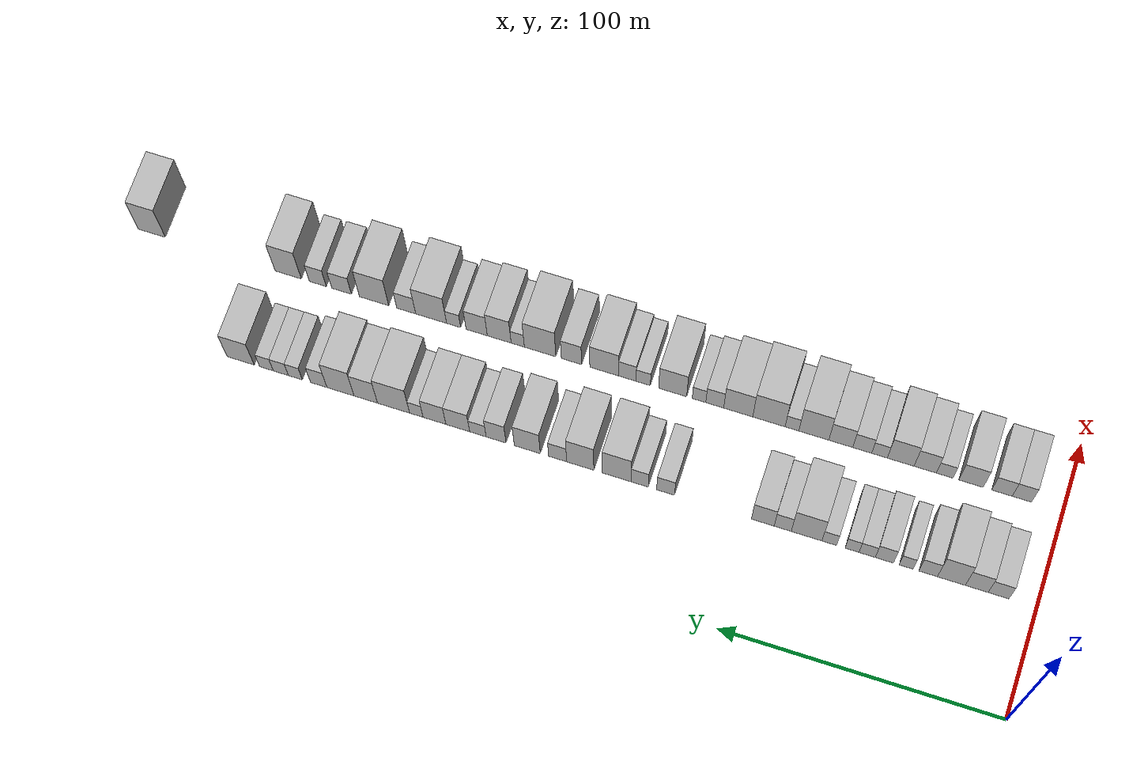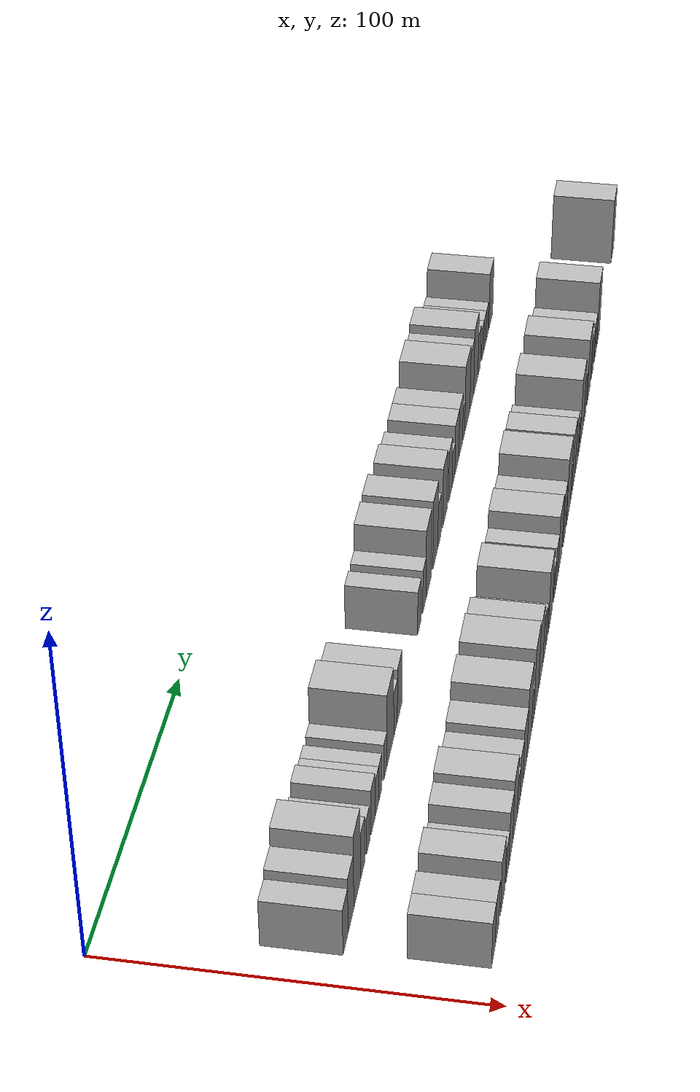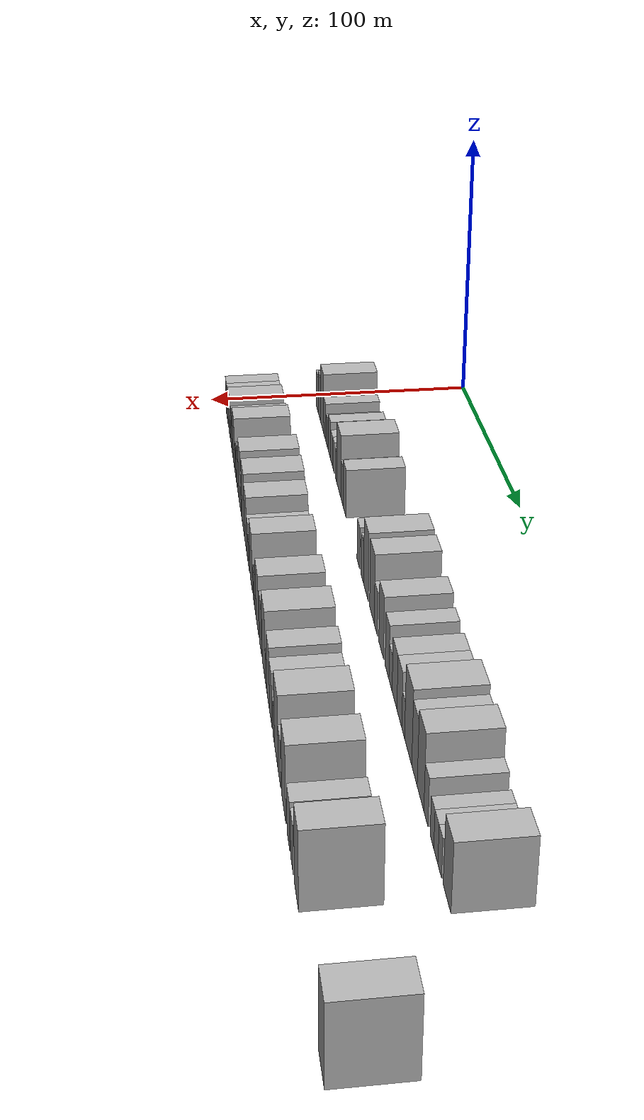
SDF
<sdf version="1.6">
 <world name="default">
  <model name="building_32">
   <static>1</static>
   <pose>50.0000 13.3636 0 0.000000 0.000000 0.000000</pose>
   <link name="link">
    <pose>0 0 7.50 0 0 0</pose>
    <collision name="collision"><geometry><box><size>20.0000 7.2272 15.0000</size></box></geometry></collision>
    <visual name="visual">
     <cast_shadows>0</cast_shadows>
     <geometry><box><size>20.0000 7.2272 15.0000</size></box></geometry>
     <material>
      <script>
       <uri>model://HANNAS_wall/materials/scripts</uri>
       <uri>model://HANNAS_wall/materials/textures</uri>
       <name>vrc/HANNAS_wall</name>
      </script>
     </material>
    </visual>
   </link>
  </model>
  <model name="building_33">
   <static>1</static>
   <pose>50.0000 20.9551 0 0.000000 0.000000 0.000000</pose>
   <link name="link">
    <pose>0 0 9.00 0 0 0</pose>
    <collision name="collision"><geometry><box><size>20.0000 7.9557 18.0000</size></box></geometry></collision>
    <visual name="visual">
     <cast_shadows>0</cast_shadows>
     <geometry><box><size>20.0000 7.9557 18.0000</size></box></geometry>
     <material>
      <script>
       <uri>model://HANNAS_wall/materials/scripts</uri>
       <uri>model://HANNAS_wall/materials/textures</uri>
       <name>vrc/HANNAS_wall</name>
      </script>
     </material>
    </visual>
   </link>
  </model>
  <model name="building_34">
   <static>1</static>
   <pose>50.0000 29.8034 0 0.000000 0.000000 0.000000</pose>
   <link name="link">
    <pose>0 0 12.00 0 0 0</pose>
    <collision name="collision"><geometry><box><size>20.0000 9.7410 24.0000</size></box></geometry></collision>
    <visual name="visual">
     <cast_shadows>0</cast_shadows>
     <geometry><box><size>20.0000 9.7410 24.0000</size></box></geometry>
     <material>
      <script>
       <uri>model://HANNAS_wall/materials/scripts</uri>
       <uri>model://HANNAS_wall/materials/textures</uri>
       <name>vrc/HANNAS_wall</name>
      </script>
     </material>
    </visual>
   </link>
  </model>
  <model name="building_35">
   <static>1</static>
   <pose>50.0000 37.9093 0 0.000000 0.000000 0.000000</pose>
   <link name="link">
    <pose>0 0 7.50 0 0 0</pose>
    <collision name="collision"><geometry><box><size>20.0000 6.4709 15.0000</size></box></geometry></collision>
    <visual name="visual">
     <cast_shadows>0</cast_shadows>
     <geometry><box><size>20.0000 6.4709 15.0000</size></box></geometry>
     <material>
      <script>
       <uri>model://HANNAS_wall/materials/scripts</uri>
       <uri>model://HANNAS_wall/materials/textures</uri>
       <name>vrc/HANNAS_wall</name>
      </script>
     </material>
    </visual>
   </link>
  </model>
  <model name="building_36">
   <static>1</static>
   <pose>50.0000 45.5995 0 0.000000 0.000000 0.000000</pose>
   <link name="link">
    <pose>0 0 6.00 0 0 0</pose>
    <collision name="collision"><geometry><box><size>20.0000 4.9094 12.0000</size></box></geometry></collision>
    <visual name="visual">
     <cast_shadows>0</cast_shadows>
     <geometry><box><size>20.0000 4.9094 12.0000</size></box></geometry>
     <material>
      <script>
       <uri>model://HANNAS_wall/materials/scripts</uri>
       <uri>model://HANNAS_wall/materials/textures</uri>
       <name>vrc/HANNAS_wall</name>
      </script>
     </material>
    </visual>
   </link>
  </model>
  <model name="building_37">
   <static>1</static>
   <pose>50.0000 53.2452 0 0.000000 0.000000 0.000000</pose>
   <link name="link">
    <pose>0 0 7.50 0 0 0</pose>
    <collision name="collision"><geometry><box><size>20.0000 6.3820 15.0000</size></box></geometry></collision>
    <visual name="visual">
     <cast_shadows>0</cast_shadows>
     <geometry><box><size>20.0000 6.3820 15.0000</size></box></geometry>
     <material>
      <script>
       <uri>model://HANNAS_wall/materials/scripts</uri>
       <uri>model://HANNAS_wall/materials/textures</uri>
       <name>vrc/HANNAS_wall</name>
      </script>
     </material>
    </visual>
   </link>
  </model>
  <model name="building_38">
   <static>1</static>
   <pose>50.0000 59.3104 0 0.000000 0.000000 0.000000</pose>
   <link name="link">
    <pose>0 0 6.00 0 0 0</pose>
    <collision name="collision"><geometry><box><size>20.0000 5.7483 12.0000</size></box></geometry></collision>
    <visual name="visual">
     <cast_shadows>0</cast_shadows>
     <geometry><box><size>20.0000 5.7483 12.0000</size></box></geometry>
     <material>
      <script>
       <uri>model://HANNAS_wall/materials/scripts</uri>
       <uri>model://HANNAS_wall/materials/textures</uri>
       <name>vrc/HANNAS_wall</name>
      </script>
     </material>
    </visual>
   </link>
  </model>
  <model name="building_39">
   <static>1</static>
   <pose>50.0000 64.6195 0 0.000000 0.000000 0.000000</pose>
   <link name="link">
    <pose>0 0 6.00 0 0 0</pose>
    <collision name="collision"><geometry><box><size>20.0000 4.8699 12.0000</size></box></geometry></collision>
    <visual name="visual">
     <cast_shadows>0</cast_shadows>
     <geometry><box><size>20.0000 4.8699 12.0000</size></box></geometry>
     <material>
      <script>
       <uri>model://HANNAS_wall/materials/scripts</uri>
       <uri>model://HANNAS_wall/materials/textures</uri>
       <name>vrc/HANNAS_wall</name>
      </script>
     </material>
    </visual>
   </link>
  </model>
  <model name="building_40">
   <static>1</static>
   <pose>50.0000 72.6378 0 0.000000 0.000000 0.000000</pose>
   <link name="link">
    <pose>0 0 6.00 0 0 0</pose>
    <collision name="collision"><geometry><box><size>20.0000 5.1669 12.0000</size></box></geometry></collision>
    <visual name="visual">
     <cast_shadows>0</cast_shadows>
     <geometry><box><size>20.0000 5.1669 12.0000</size></box></geometry>
     <material>
      <script>
       <uri>model://HANNAS_wall/materials/scripts</uri>
       <uri>model://HANNAS_wall/materials/textures</uri>
       <name>vrc/HANNAS_wall</name>
      </script>
     </material>
    </visual>
   </link>
  </model>
  <model name="building_41">
   <static>1</static>
   <pose>50.0000 80.6413 0 0.000000 0.000000 0.000000</pose>
   <link name="link">
    <pose>0 0 12.00 0 0 0</pose>
    <collision name="collision"><geometry><box><size>20.0000 10.8400 24.0000</size></box></geometry></collision>
    <visual name="visual">
     <cast_shadows>0</cast_shadows>
     <geometry><box><size>20.0000 10.8400 24.0000</size></box></geometry>
     <material>
      <script>
       <uri>model://HANNAS_wall/materials/scripts</uri>
       <uri>model://HANNAS_wall/materials/textures</uri>
       <name>vrc/HANNAS_wall</name>
      </script>
     </material>
    </visual>
   </link>
  </model>
  <model name="building_42">
   <static>1</static>
   <pose>50.0000 89.0804 0 0.000000 0.000000 0.000000</pose>
   <link name="link">
    <pose>0 0 7.50 0 0 0</pose>
    <collision name="collision"><geometry><box><size>20.0000 6.0383 15.0000</size></box></geometry></collision>
    <visual name="visual">
     <cast_shadows>0</cast_shadows>
     <geometry><box><size>20.0000 6.0383 15.0000</size></box></geometry>
     <material>
      <script>
       <uri>model://HANNAS_wall/materials/scripts</uri>
       <uri>model://HANNAS_wall/materials/textures</uri>
       <name>vrc/HANNAS_wall</name>
      </script>
     </material>
    </visual>
   </link>
  </model>
  <model name="building_43">
   <static>1</static>
   <pose>50.0000 96.1338 0 0.000000 0.000000 0.000000</pose>
   <link name="link">
    <pose>0 0 9.00 0 0 0</pose>
    <collision name="collision"><geometry><box><size>20.0000 8.0684 18.0000</size></box></geometry></collision>
    <visual name="visual">
     <cast_shadows>0</cast_shadows>
     <geometry><box><size>20.0000 8.0684 18.0000</size></box></geometry>
     <material>
      <script>
       <uri>model://HANNAS_wall/materials/scripts</uri>
       <uri>model://HANNAS_wall/materials/textures</uri>
       <name>vrc/HANNAS_wall</name>
      </script>
     </material>
    </visual>
   </link>
  </model>
  <model name="building_44">
   <static>1</static>
   <pose>50.0000 130.7554 0 0.000000 0.000000 0.000000</pose>
   <link name="link">
    <pose>0 0 7.50 0 0 0</pose>
    <collision name="collision"><geometry><box><size>20.0000 6.3916 15.0000</size></box></geometry></collision>
    <visual name="visual">
     <cast_shadows>0</cast_shadows>
     <geometry><box><size>20.0000 6.3916 15.0000</size></box></geometry>
     <material>
      <script>
       <uri>model://HANNAS_wall/materials/scripts</uri>
       <uri>model://HANNAS_wall/materials/textures</uri>
       <name>vrc/HANNAS_wall</name>
      </script>
     </material>
    </visual>
   </link>
  </model>
  <model name="building_45">
   <static>1</static>
   <pose>50.0000 140.0205 0 0.000000 0.000000 0.000000</pose>
   <link name="link">
    <pose>0 0 7.50 0 0 0</pose>
    <collision name="collision"><geometry><box><size>20.0000 6.1386 15.0000</size></box></geometry></collision>
    <visual name="visual">
     <cast_shadows>0</cast_shadows>
     <geometry><box><size>20.0000 6.1386 15.0000</size></box></geometry>
     <material>
      <script>
       <uri>model://HANNAS_wall/materials/scripts</uri>
       <uri>model://HANNAS_wall/materials/textures</uri>
       <name>vrc/HANNAS_wall</name>
      </script>
     </material>
    </visual>
   </link>
  </model>
  <model name="building_46">
   <static>1</static>
   <pose>50.0000 148.2780 0 0.000000 0.000000 0.000000</pose>
   <link name="link">
    <pose>0 0 12.00 0 0 0</pose>
    <collision name="collision"><geometry><box><size>20.0000 10.3763 24.0000</size></box></geometry></collision>
    <visual name="visual">
     <cast_shadows>0</cast_shadows>
     <geometry><box><size>20.0000 10.3763 24.0000</size></box></geometry>
     <material>
      <script>
       <uri>model://HANNAS_wall/materials/scripts</uri>
       <uri>model://HANNAS_wall/materials/textures</uri>
       <name>vrc/HANNAS_wall</name>
      </script>
     </material>
    </visual>
   </link>
  </model>
  <model name="building_47">
   <static>1</static>
   <pose>50.0000 161.3583 0 0.000000 0.000000 0.000000</pose>
   <link name="link">
    <pose>0 0 12.00 0 0 0</pose>
    <collision name="collision"><geometry><box><size>20.0000 9.7842 24.0000</size></box></geometry></collision>
    <visual name="visual">
     <cast_shadows>0</cast_shadows>
     <geometry><box><size>20.0000 9.7842 24.0000</size></box></geometry>
     <material>
      <script>
       <uri>model://HANNAS_wall/materials/scripts</uri>
       <uri>model://HANNAS_wall/materials/textures</uri>
       <name>vrc/HANNAS_wall</name>
      </script>
     </material>
    </visual>
   </link>
  </model>
  <model name="building_48">
   <static>1</static>
   <pose>50.0000 169.5037 0 0.000000 0.000000 0.000000</pose>
   <link name="link">
    <pose>0 0 7.50 0 0 0</pose>
    <collision name="collision"><geometry><box><size>20.0000 6.5066 15.0000</size></box></geometry></collision>
    <visual name="visual">
     <cast_shadows>0</cast_shadows>
     <geometry><box><size>20.0000 6.5066 15.0000</size></box></geometry>
     <material>
      <script>
       <uri>model://HANNAS_wall/materials/scripts</uri>
       <uri>model://HANNAS_wall/materials/textures</uri>
       <name>vrc/HANNAS_wall</name>
      </script>
     </material>
    </visual>
   </link>
  </model>
  <model name="building_49">
   <static>1</static>
   <pose>50.0000 180.4436 0 0.000000 0.000000 0.000000</pose>
   <link name="link">
    <pose>0 0 10.50 0 0 0</pose>
    <collision name="collision"><geometry><box><size>20.0000 9.3733 21.0000</size></box></geometry></collision>
    <visual name="visual">
     <cast_shadows>0</cast_shadows>
     <geometry><box><size>20.0000 9.3733 21.0000</size></box></geometry>
     <material>
      <script>
       <uri>model://HANNAS_wall/materials/scripts</uri>
       <uri>model://HANNAS_wall/materials/textures</uri>
       <name>vrc/HANNAS_wall</name>
      </script>
     </material>
    </visual>
   </link>
  </model>
  <model name="building_50">
   <static>1</static>
   <pose>50.0000 191.7479 0 0.000000 0.000000 0.000000</pose>
   <link name="link">
    <pose>0 0 9.00 0 0 0</pose>
    <collision name="collision"><geometry><box><size>20.0000 7.2354 18.0000</size></box></geometry></collision>
    <visual name="visual">
     <cast_shadows>0</cast_shadows>
     <geometry><box><size>20.0000 7.2354 18.0000</size></box></geometry>
     <material>
      <script>
       <uri>model://HANNAS_wall/materials/scripts</uri>
       <uri>model://HANNAS_wall/materials/textures</uri>
       <name>vrc/HANNAS_wall</name>
      </script>
     </material>
    </visual>
   </link>
  </model>
  <model name="building_51">
   <static>1</static>
   <pose>50.0000 198.3375 0 0.000000 0.000000 0.000000</pose>
   <link name="link">
    <pose>0 0 6.00 0 0 0</pose>
    <collision name="collision"><geometry><box><size>20.0000 5.9438 12.0000</size></box></geometry></collision>
    <visual name="visual">
     <cast_shadows>0</cast_shadows>
     <geometry><box><size>20.0000 5.9438 12.0000</size></box></geometry>
     <material>
      <script>
       <uri>model://HANNAS_wall/materials/scripts</uri>
       <uri>model://HANNAS_wall/materials/textures</uri>
       <name>vrc/HANNAS_wall</name>
      </script>
     </material>
    </visual>
   </link>
  </model>
  <model name="building_52">
   <static>1</static>
   <pose>50.0000 205.6407 0 0.000000 0.000000 0.000000</pose>
   <link name="link">
    <pose>0 0 9.00 0 0 0</pose>
    <collision name="collision"><geometry><box><size>20.0000 8.6625 18.0000</size></box></geometry></collision>
    <visual name="visual">
     <cast_shadows>0</cast_shadows>
     <geometry><box><size>20.0000 8.6625 18.0000</size></box></geometry>
     <material>
      <script>
       <uri>model://HANNAS_wall/materials/scripts</uri>
       <uri>model://HANNAS_wall/materials/textures</uri>
       <name>vrc/HANNAS_wall</name>
      </script>
     </material>
    </visual>
   </link>
  </model>
  <model name="building_53">
   <static>1</static>
   <pose>50.0000 214.1257 0 0.000000 0.000000 0.000000</pose>
   <link name="link">
    <pose>0 0 9.00 0 0 0</pose>
    <collision name="collision"><geometry><box><size>20.0000 8.3075 18.0000</size></box></geometry></collision>
    <visual name="visual">
     <cast_shadows>0</cast_shadows>
     <geometry><box><size>20.0000 8.3075 18.0000</size></box></geometry>
     <material>
      <script>
       <uri>model://HANNAS_wall/materials/scripts</uri>
       <uri>model://HANNAS_wall/materials/textures</uri>
       <name>vrc/HANNAS_wall</name>
      </script>
     </material>
    </visual>
   </link>
  </model>
  <model name="building_54">
   <static>1</static>
   <pose>50.0000 220.7303 0 0.000000 0.000000 0.000000</pose>
   <link name="link">
    <pose>0 0 6.00 0 0 0</pose>
    <collision name="collision"><geometry><box><size>20.0000 4.9018 12.0000</size></box></geometry></collision>
    <visual name="visual">
     <cast_shadows>0</cast_shadows>
     <geometry><box><size>20.0000 4.9018 12.0000</size></box></geometry>
     <material>
      <script>
       <uri>model://HANNAS_wall/materials/scripts</uri>
       <uri>model://HANNAS_wall/materials/textures</uri>
       <name>vrc/HANNAS_wall</name>
      </script>
     </material>
    </visual>
   </link>
  </model>
  <model name="building_55">
   <static>1</static>
   <pose>50.0000 229.0439 0 0.000000 0.000000 0.000000</pose>
   <link name="link">
    <pose>0 0 12.00 0 0 0</pose>
    <collision name="collision"><geometry><box><size>20.0000 11.7254 24.0000</size></box></geometry></collision>
    <visual name="visual">
     <cast_shadows>0</cast_shadows>
     <geometry><box><size>20.0000 11.7254 24.0000</size></box></geometry>
     <material>
      <script>
       <uri>model://HANNAS_wall/materials/scripts</uri>
       <uri>model://HANNAS_wall/materials/textures</uri>
       <name>vrc/HANNAS_wall</name>
      </script>
     </material>
    </visual>
   </link>
  </model>
  <model name="building_56">
   <static>1</static>
   <pose>50.0000 239.1916 0 0.000000 0.000000 0.000000</pose>
   <link name="link">
    <pose>0 0 10.50 0 0 0</pose>
    <collision name="collision"><geometry><box><size>20.0000 8.5701 21.0000</size></box></geometry></collision>
    <visual name="visual">
     <cast_shadows>0</cast_shadows>
     <geometry><box><size>20.0000 8.5701 21.0000</size></box></geometry>
     <material>
      <script>
       <uri>model://HANNAS_wall/materials/scripts</uri>
       <uri>model://HANNAS_wall/materials/textures</uri>
       <name>vrc/HANNAS_wall</name>
      </script>
     </material>
    </visual>
   </link>
  </model>
  <model name="building_57">
   <static>1</static>
   <pose>50.0000 248.4637 0 0.000000 0.000000 0.000000</pose>
   <link name="link">
    <pose>0 0 12.00 0 0 0</pose>
    <collision name="collision"><geometry><box><size>20.0000 9.9740 24.0000</size></box></geometry></collision>
    <visual name="visual">
     <cast_shadows>0</cast_shadows>
     <geometry><box><size>20.0000 9.9740 24.0000</size></box></geometry>
     <material>
      <script>
       <uri>model://HANNAS_wall/materials/scripts</uri>
       <uri>model://HANNAS_wall/materials/textures</uri>
       <name>vrc/HANNAS_wall</name>
      </script>
     </material>
    </visual>
   </link>
  </model>
  <model name="building_58">
   <static>1</static>
   <pose>50.0000 256.4814 0 0.000000 0.000000 0.000000</pose>
   <link name="link">
    <pose>0 0 7.50 0 0 0</pose>
    <collision name="collision"><geometry><box><size>20.0000 6.0614 15.0000</size></box></geometry></collision>
    <visual name="visual">
     <cast_shadows>0</cast_shadows>
     <geometry><box><size>20.0000 6.0614 15.0000</size></box></geometry>
     <material>
      <script>
       <uri>model://HANNAS_wall/materials/scripts</uri>
       <uri>model://HANNAS_wall/materials/textures</uri>
       <name>vrc/HANNAS_wall</name>
      </script>
     </material>
    </visual>
   </link>
  </model>
  <model name="building_59">
   <static>1</static>
   <pose>50.0000 265.0682 0 0.000000 0.000000 0.000000</pose>
   <link name="link">
    <pose>0 0 6.00 0 0 0</pose>
    <collision name="collision"><geometry><box><size>20.0000 5.1121 12.0000</size></box></geometry></collision>
    <visual name="visual">
     <cast_shadows>0</cast_shadows>
     <geometry><box><size>20.0000 5.1121 12.0000</size></box></geometry>
     <material>
      <script>
       <uri>model://HANNAS_wall/materials/scripts</uri>
       <uri>model://HANNAS_wall/materials/textures</uri>
       <name>vrc/HANNAS_wall</name>
      </script>
     </material>
    </visual>
   </link>
  </model>
  <model name="building_60">
   <static>1</static>
   <pose>50.0000 270.4138 0 0.000000 0.000000 0.000000</pose>
   <link name="link">
    <pose>0 0 6.00 0 0 0</pose>
    <collision name="collision"><geometry><box><size>20.0000 5.5793 12.0000</size></box></geometry></collision>
    <visual name="visual">
     <cast_shadows>0</cast_shadows>
     <geometry><box><size>20.0000 5.5793 12.0000</size></box></geometry>
     <material>
      <script>
       <uri>model://HANNAS_wall/materials/scripts</uri>
       <uri>model://HANNAS_wall/materials/textures</uri>
       <name>vrc/HANNAS_wall</name>
      </script>
     </material>
    </visual>
   </link>
  </model>
  <model name="building_61">
   <static>1</static>
   <pose>50.0000 275.7355 0 0.000000 0.000000 0.000000</pose>
   <link name="link">
    <pose>0 0 6.00 0 0 0</pose>
    <collision name="collision"><geometry><box><size>20.0000 5.0640 12.0000</size></box></geometry></collision>
    <visual name="visual">
     <cast_shadows>0</cast_shadows>
     <geometry><box><size>20.0000 5.0640 12.0000</size></box></geometry>
     <material>
      <script>
       <uri>model://HANNAS_wall/materials/scripts</uri>
       <uri>model://HANNAS_wall/materials/textures</uri>
       <name>vrc/HANNAS_wall</name>
      </script>
     </material>
    </visual>
   </link>
  </model>
  <model name="building_62">
   <static>1</static>
   <pose>50.0000 285.2897 0 0.000000 0.000000 0.000000</pose>
   <link name="link">
    <pose>0 0 10.50 0 0 0</pose>
    <collision name="collision"><geometry><box><size>20.0000 10.0445 21.0000</size></box></geometry></collision>
    <visual name="visual">
     <cast_shadows>0</cast_shadows>
     <geometry><box><size>20.0000 10.0445 21.0000</size></box></geometry>
     <material>
      <script>
       <uri>model://HANNAS_wall/materials/scripts</uri>
       <uri>model://HANNAS_wall/materials/textures</uri>
       <name>vrc/HANNAS_wall</name>
      </script>
     </material>
    </visual>
   </link>
  </model>
  <model name="building_94">
   <static>1</static>
   <pose>85.0000 14.5517 0 0.000000 0.000000 0.000000</pose>
   <link name="link">
    <pose>0 0 7.50 0 0 0</pose>
    <collision name="collision"><geometry><box><size>20.0000 6.7993 15.0000</size></box></geometry></collision>
    <visual name="visual">
     <cast_shadows>0</cast_shadows>
     <geometry><box><size>20.0000 6.7993 15.0000</size></box></geometry>
     <material>
      <script>
       <uri>model://HANNAS_wall/materials/scripts</uri>
       <uri>model://HANNAS_wall/materials/textures</uri>
       <name>vrc/HANNAS_wall</name>
      </script>
     </material>
    </visual>
   </link>
  </model>
  <model name="building_95">
   <static>1</static>
   <pose>85.0000 21.5621 0 0.000000 0.000000 0.000000</pose>
   <link name="link">
    <pose>0 0 7.50 0 0 0</pose>
    <collision name="collision"><geometry><box><size>20.0000 7.2215 15.0000</size></box></geometry></collision>
    <visual name="visual">
     <cast_shadows>0</cast_shadows>
     <geometry><box><size>20.0000 7.2215 15.0000</size></box></geometry>
     <material>
      <script>
       <uri>model://HANNAS_wall/materials/scripts</uri>
       <uri>model://HANNAS_wall/materials/textures</uri>
       <name>vrc/HANNAS_wall</name>
      </script>
     </material>
    </visual>
   </link>
  </model>
  <model name="building_96">
   <static>1</static>
   <pose>85.0000 32.5027 0 0.000000 0.000000 0.000000</pose>
   <link name="link">
    <pose>0 0 9.00 0 0 0</pose>
    <collision name="collision"><geometry><box><size>20.0000 8.6599 18.0000</size></box></geometry></collision>
    <visual name="visual">
     <cast_shadows>0</cast_shadows>
     <geometry><box><size>20.0000 8.6599 18.0000</size></box></geometry>
     <material>
      <script>
       <uri>model://HANNAS_wall/materials/scripts</uri>
       <uri>model://HANNAS_wall/materials/textures</uri>
       <name>vrc/HANNAS_wall</name>
      </script>
     </material>
    </visual>
   </link>
  </model>
  <model name="building_97">
   <static>1</static>
   <pose>85.0000 41.7914 0 0.000000 0.000000 0.000000</pose>
   <link name="link">
    <pose>0 0 6.00 0 0 0</pose>
    <collision name="collision"><geometry><box><size>20.0000 5.9176 12.0000</size></box></geometry></collision>
    <visual name="visual">
     <cast_shadows>0</cast_shadows>
     <geometry><box><size>20.0000 5.9176 12.0000</size></box></geometry>
     <material>
      <script>
       <uri>model://HANNAS_wall/materials/scripts</uri>
       <uri>model://HANNAS_wall/materials/textures</uri>
       <name>vrc/HANNAS_wall</name>
      </script>
     </material>
    </visual>
   </link>
  </model>
  <model name="building_98">
   <static>1</static>
   <pose>85.0000 48.6996 0 0.000000 0.000000 0.000000</pose>
   <link name="link">
    <pose>0 0 9.00 0 0 0</pose>
    <collision name="collision"><geometry><box><size>20.0000 7.8988 18.0000</size></box></geometry></collision>
    <visual name="visual">
     <cast_shadows>0</cast_shadows>
     <geometry><box><size>20.0000 7.8988 18.0000</size></box></geometry>
     <material>
      <script>
       <uri>model://HANNAS_wall/materials/scripts</uri>
       <uri>model://HANNAS_wall/materials/textures</uri>
       <name>vrc/HANNAS_wall</name>
      </script>
     </material>
    </visual>
   </link>
  </model>
  <model name="building_99">
   <static>1</static>
   <pose>85.0000 57.4190 0 0.000000 0.000000 0.000000</pose>
   <link name="link">
    <pose>0 0 10.50 0 0 0</pose>
    <collision name="collision"><geometry><box><size>20.0000 9.5400 21.0000</size></box></geometry></collision>
    <visual name="visual">
     <cast_shadows>0</cast_shadows>
     <geometry><box><size>20.0000 9.5400 21.0000</size></box></geometry>
     <material>
      <script>
       <uri>model://HANNAS_wall/materials/scripts</uri>
       <uri>model://HANNAS_wall/materials/textures</uri>
       <name>vrc/HANNAS_wall</name>
      </script>
     </material>
    </visual>
   </link>
  </model>
  <model name="building_100">
   <static>1</static>
   <pose>85.0000 64.9570 0 0.000000 0.000000 0.000000</pose>
   <link name="link">
    <pose>0 0 6.00 0 0 0</pose>
    <collision name="collision"><geometry><box><size>20.0000 5.5361 12.0000</size></box></geometry></collision>
    <visual name="visual">
     <cast_shadows>0</cast_shadows>
     <geometry><box><size>20.0000 5.5361 12.0000</size></box></geometry>
     <material>
      <script>
       <uri>model://HANNAS_wall/materials/scripts</uri>
       <uri>model://HANNAS_wall/materials/textures</uri>
       <name>vrc/HANNAS_wall</name>
      </script>
     </material>
    </visual>
   </link>
  </model>
  <model name="building_101">
   <static>1</static>
   <pose>85.0000 71.0987 0 0.000000 0.000000 0.000000</pose>
   <link name="link">
    <pose>0 0 7.50 0 0 0</pose>
    <collision name="collision"><geometry><box><size>20.0000 6.7472 15.0000</size></box></geometry></collision>
    <visual name="visual">
     <cast_shadows>0</cast_shadows>
     <geometry><box><size>20.0000 6.7472 15.0000</size></box></geometry>
     <material>
      <script>
       <uri>model://HANNAS_wall/materials/scripts</uri>
       <uri>model://HANNAS_wall/materials/textures</uri>
       <name>vrc/HANNAS_wall</name>
      </script>
     </material>
    </visual>
   </link>
  </model>
  <model name="building_102">
   <static>1</static>
   <pose>85.0000 78.7626 0 0.000000 0.000000 0.000000</pose>
   <link name="link">
    <pose>0 0 9.00 0 0 0</pose>
    <collision name="collision"><geometry><box><size>20.0000 8.5805 18.0000</size></box></geometry></collision>
    <visual name="visual">
     <cast_shadows>0</cast_shadows>
     <geometry><box><size>20.0000 8.5805 18.0000</size></box></geometry>
     <material>
      <script>
       <uri>model://HANNAS_wall/materials/scripts</uri>
       <uri>model://HANNAS_wall/materials/textures</uri>
       <name>vrc/HANNAS_wall</name>
      </script>
     </material>
    </visual>
   </link>
  </model>
  <model name="building_103">
   <static>1</static>
   <pose>85.0000 88.4265 0 0.000000 0.000000 0.000000</pose>
   <link name="link">
    <pose>0 0 12.00 0 0 0</pose>
    <collision name="collision"><geometry><box><size>20.0000 10.7473 24.0000</size></box></geometry></collision>
    <visual name="visual">
     <cast_shadows>0</cast_shadows>
     <geometry><box><size>20.0000 10.7473 24.0000</size></box></geometry>
     <material>
      <script>
       <uri>model://HANNAS_wall/materials/scripts</uri>
       <uri>model://HANNAS_wall/materials/textures</uri>
       <name>vrc/HANNAS_wall</name>
      </script>
     </material>
    </visual>
   </link>
  </model>
  <model name="building_104">
   <static>1</static>
   <pose>85.0000 96.2501 0 0.000000 0.000000 0.000000</pose>
   <link name="link">
    <pose>0 0 6.00 0 0 0</pose>
    <collision name="collision"><geometry><box><size>20.0000 4.8999 12.0000</size></box></geometry></collision>
    <visual name="visual">
     <cast_shadows>0</cast_shadows>
     <geometry><box><size>20.0000 4.8999 12.0000</size></box></geometry>
     <material>
      <script>
       <uri>model://HANNAS_wall/materials/scripts</uri>
       <uri>model://HANNAS_wall/materials/textures</uri>
       <name>vrc/HANNAS_wall</name>
      </script>
     </material>
    </visual>
   </link>
  </model>
  <model name="building_105">
   <static>1</static>
   <pose>85.0000 104.5056 0 0.000000 0.000000 0.000000</pose>
   <link name="link">
    <pose>0 0 12.00 0 0 0</pose>
    <collision name="collision"><geometry><box><size>20.0000 11.6113 24.0000</size></box></geometry></collision>
    <visual name="visual">
     <cast_shadows>0</cast_shadows>
     <geometry><box><size>20.0000 11.6113 24.0000</size></box></geometry>
     <material>
      <script>
       <uri>model://HANNAS_wall/materials/scripts</uri>
       <uri>model://HANNAS_wall/materials/textures</uri>
       <name>vrc/HANNAS_wall</name>
      </script>
     </material>
    </visual>
   </link>
  </model>
  <model name="building_106">
   <static>1</static>
   <pose>85.0000 115.5586 0 0.000000 0.000000 0.000000</pose>
   <link name="link">
    <pose>0 0 10.50 0 0 0</pose>
    <collision name="collision"><geometry><box><size>20.0000 10.4946 21.0000</size></box></geometry></collision>
    <visual name="visual">
     <cast_shadows>0</cast_shadows>
     <geometry><box><size>20.0000 10.4946 21.0000</size></box></geometry>
     <material>
      <script>
       <uri>model://HANNAS_wall/materials/scripts</uri>
       <uri>model://HANNAS_wall/materials/textures</uri>
       <name>vrc/HANNAS_wall</name>
      </script>
     </material>
    </visual>
   </link>
  </model>
  <model name="building_107">
   <static>1</static>
   <pose>85.0000 124.0346 0 0.000000 0.000000 0.000000</pose>
   <link name="link">
    <pose>0 0 7.50 0 0 0</pose>
    <collision name="collision"><geometry><box><size>20.0000 6.4575 15.0000</size></box></geometry></collision>
    <visual name="visual">
     <cast_shadows>0</cast_shadows>
     <geometry><box><size>20.0000 6.4575 15.0000</size></box></geometry>
     <material>
      <script>
       <uri>model://HANNAS_wall/materials/scripts</uri>
       <uri>model://HANNAS_wall/materials/textures</uri>
       <name>vrc/HANNAS_wall</name>
      </script>
     </material>
    </visual>
   </link>
  </model>
  <model name="building_108">
   <static>1</static>
   <pose>85.0000 129.7126 0 0.000000 0.000000 0.000000</pose>
   <link name="link">
    <pose>0 0 6.00 0 0 0</pose>
    <collision name="collision"><geometry><box><size>20.0000 4.8984 12.0000</size></box></geometry></collision>
    <visual name="visual">
     <cast_shadows>0</cast_shadows>
     <geometry><box><size>20.0000 4.8984 12.0000</size></box></geometry>
     <material>
      <script>
       <uri>model://HANNAS_wall/materials/scripts</uri>
       <uri>model://HANNAS_wall/materials/textures</uri>
       <name>vrc/HANNAS_wall</name>
      </script>
     </material>
    </visual>
   </link>
  </model>
  <model name="building_109">
   <static>1</static>
   <pose>85.0000 139.2313 0 0.000000 0.000000 0.000000</pose>
   <link name="link">
    <pose>0 0 10.50 0 0 0</pose>
    <collision name="collision"><geometry><box><size>20.0000 10.1390 21.0000</size></box></geometry></collision>
    <visual name="visual">
     <cast_shadows>0</cast_shadows>
     <geometry><box><size>20.0000 10.1390 21.0000</size></box></geometry>
     <material>
      <script>
       <uri>model://HANNAS_wall/materials/scripts</uri>
       <uri>model://HANNAS_wall/materials/textures</uri>
       <name>vrc/HANNAS_wall</name>
      </script>
     </material>
    </visual>
   </link>
  </model>
  <model name="building_110">
   <static>1</static>
   <pose>85.0000 149.8975 0 0.000000 0.000000 0.000000</pose>
   <link name="link">
    <pose>0 0 6.00 0 0 0</pose>
    <collision name="collision"><geometry><box><size>20.0000 5.1934 12.0000</size></box></geometry></collision>
    <visual name="visual">
     <cast_shadows>0</cast_shadows>
     <geometry><box><size>20.0000 5.1934 12.0000</size></box></geometry>
     <material>
      <script>
       <uri>model://HANNAS_wall/materials/scripts</uri>
       <uri>model://HANNAS_wall/materials/textures</uri>
       <name>vrc/HANNAS_wall</name>
      </script>
     </material>
    </visual>
   </link>
  </model>
  <model name="building_111">
   <static>1</static>
   <pose>85.0000 155.6579 0 0.000000 0.000000 0.000000</pose>
   <link name="link">
    <pose>0 0 7.50 0 0 0</pose>
    <collision name="collision"><geometry><box><size>20.0000 6.3274 15.0000</size></box></geometry></collision>
    <visual name="visual">
     <cast_shadows>0</cast_shadows>
     <geometry><box><size>20.0000 6.3274 15.0000</size></box></geometry>
     <material>
      <script>
       <uri>model://HANNAS_wall/materials/scripts</uri>
       <uri>model://HANNAS_wall/materials/textures</uri>
       <name>vrc/HANNAS_wall</name>
      </script>
     </material>
    </visual>
   </link>
  </model>
  <model name="building_112">
   <static>1</static>
   <pose>85.0000 164.0703 0 0.000000 0.000000 0.000000</pose>
   <link name="link">
    <pose>0 0 10.50 0 0 0</pose>
    <collision name="collision"><geometry><box><size>20.0000 10.4974 21.0000</size></box></geometry></collision>
    <visual name="visual">
     <cast_shadows>0</cast_shadows>
     <geometry><box><size>20.0000 10.4974 21.0000</size></box></geometry>
     <material>
      <script>
       <uri>model://HANNAS_wall/materials/scripts</uri>
       <uri>model://HANNAS_wall/materials/textures</uri>
       <name>vrc/HANNAS_wall</name>
      </script>
     </material>
    </visual>
   </link>
  </model>
  <model name="building_113">
   <static>1</static>
   <pose>85.0000 176.0160 0 0.000000 0.000000 0.000000</pose>
   <link name="link">
    <pose>0 0 9.00 0 0 0</pose>
    <collision name="collision"><geometry><box><size>20.0000 7.3939 18.0000</size></box></geometry></collision>
    <visual name="visual">
     <cast_shadows>0</cast_shadows>
     <geometry><box><size>20.0000 7.3939 18.0000</size></box></geometry>
     <material>
      <script>
       <uri>model://HANNAS_wall/materials/scripts</uri>
       <uri>model://HANNAS_wall/materials/textures</uri>
       <name>vrc/HANNAS_wall</name>
      </script>
     </material>
    </visual>
   </link>
  </model>
  <model name="building_114">
   <static>1</static>
   <pose>85.0000 187.4762 0 0.000000 0.000000 0.000000</pose>
   <link name="link">
    <pose>0 0 12.00 0 0 0</pose>
    <collision name="collision"><geometry><box><size>20.0000 11.5265 24.0000</size></box></geometry></collision>
    <visual name="visual">
     <cast_shadows>0</cast_shadows>
     <geometry><box><size>20.0000 11.5265 24.0000</size></box></geometry>
     <material>
      <script>
       <uri>model://HANNAS_wall/materials/scripts</uri>
       <uri>model://HANNAS_wall/materials/textures</uri>
       <name>vrc/HANNAS_wall</name>
      </script>
     </material>
    </visual>
   </link>
  </model>
  <model name="building_115">
   <static>1</static>
   <pose>85.0000 195.6681 0 0.000000 0.000000 0.000000</pose>
   <link name="link">
    <pose>0 0 6.00 0 0 0</pose>
    <collision name="collision"><geometry><box><size>20.0000 4.8572 12.0000</size></box></geometry></collision>
    <visual name="visual">
     <cast_shadows>0</cast_shadows>
     <geometry><box><size>20.0000 4.8572 12.0000</size></box></geometry>
     <material>
      <script>
       <uri>model://HANNAS_wall/materials/scripts</uri>
       <uri>model://HANNAS_wall/materials/textures</uri>
       <name>vrc/HANNAS_wall</name>
      </script>
     </material>
    </visual>
   </link>
  </model>
  <model name="building_116">
   <static>1</static>
   <pose>85.0000 202.4715 0 0.000000 0.000000 0.000000</pose>
   <link name="link">
    <pose>0 0 10.50 0 0 0</pose>
    <collision name="collision"><geometry><box><size>20.0000 8.7496 21.0000</size></box></geometry></collision>
    <visual name="visual">
     <cast_shadows>0</cast_shadows>
     <geometry><box><size>20.0000 8.7496 21.0000</size></box></geometry>
     <material>
      <script>
       <uri>model://HANNAS_wall/materials/scripts</uri>
       <uri>model://HANNAS_wall/materials/textures</uri>
       <name>vrc/HANNAS_wall</name>
      </script>
     </material>
    </visual>
   </link>
  </model>
  <model name="building_117">
   <static>1</static>
   <pose>85.0000 210.7483 0 0.000000 0.000000 0.000000</pose>
   <link name="link">
    <pose>0 0 9.00 0 0 0</pose>
    <collision name="collision"><geometry><box><size>20.0000 7.8040 18.0000</size></box></geometry></collision>
    <visual name="visual">
     <cast_shadows>0</cast_shadows>
     <geometry><box><size>20.0000 7.8040 18.0000</size></box></geometry>
     <material>
      <script>
       <uri>model://HANNAS_wall/materials/scripts</uri>
       <uri>model://HANNAS_wall/materials/textures</uri>
       <name>vrc/HANNAS_wall</name>
      </script>
     </material>
    </visual>
   </link>
  </model>
  <model name="building_118">
   <static>1</static>
   <pose>85.0000 219.2503 0 0.000000 0.000000 0.000000</pose>
   <link name="link">
    <pose>0 0 6.00 0 0 0</pose>
    <collision name="collision"><geometry><box><size>20.0000 5.2000 12.0000</size></box></geometry></collision>
    <visual name="visual">
     <cast_shadows>0</cast_shadows>
     <geometry><box><size>20.0000 5.2000 12.0000</size></box></geometry>
     <material>
      <script>
       <uri>model://HANNAS_wall/materials/scripts</uri>
       <uri>model://HANNAS_wall/materials/textures</uri>
       <name>vrc/HANNAS_wall</name>
      </script>
     </material>
    </visual>
   </link>
  </model>
  <model name="building_119">
   <static>1</static>
   <pose>85.0000 227.5528 0 0.000000 0.000000 0.000000</pose>
   <link name="link">
    <pose>0 0 12.00 0 0 0</pose>
    <collision name="collision"><geometry><box><size>20.0000 11.4051 24.0000</size></box></geometry></collision>
    <visual name="visual">
     <cast_shadows>0</cast_shadows>
     <geometry><box><size>20.0000 11.4051 24.0000</size></box></geometry>
     <material>
      <script>
       <uri>model://HANNAS_wall/materials/scripts</uri>
       <uri>model://HANNAS_wall/materials/textures</uri>
       <name>vrc/HANNAS_wall</name>
      </script>
     </material>
    </visual>
   </link>
  </model>
  <model name="building_120">
   <static>1</static>
   <pose>85.0000 236.7445 0 0.000000 0.000000 0.000000</pose>
   <link name="link">
    <pose>0 0 7.50 0 0 0</pose>
    <collision name="collision"><geometry><box><size>20.0000 6.9784 15.0000</size></box></geometry></collision>
    <visual name="visual">
     <cast_shadows>0</cast_shadows>
     <geometry><box><size>20.0000 6.9784 15.0000</size></box></geometry>
     <material>
      <script>
       <uri>model://HANNAS_wall/materials/scripts</uri>
       <uri>model://HANNAS_wall/materials/textures</uri>
       <name>vrc/HANNAS_wall</name>
      </script>
     </material>
    </visual>
   </link>
  </model>
  <model name="building_121">
   <static>1</static>
   <pose>85.0000 248.6616 0 0.000000 0.000000 0.000000</pose>
   <link name="link">
    <pose>0 0 12.00 0 0 0</pose>
    <collision name="collision"><geometry><box><size>20.0000 10.8558 24.0000</size></box></geometry></collision>
    <visual name="visual">
     <cast_shadows>0</cast_shadows>
     <geometry><box><size>20.0000 10.8558 24.0000</size></box></geometry>
     <material>
      <script>
       <uri>model://HANNAS_wall/materials/scripts</uri>
       <uri>model://HANNAS_wall/materials/textures</uri>
       <name>vrc/HANNAS_wall</name>
      </script>
     </material>
    </visual>
   </link>
  </model>
  <model name="building_122">
   <static>1</static>
   <pose>85.0000 260.7578 0 0.000000 0.000000 0.000000</pose>
   <link name="link">
    <pose>0 0 7.50 0 0 0</pose>
    <collision name="collision"><geometry><box><size>20.0000 7.3366 15.0000</size></box></geometry></collision>
    <visual name="visual">
     <cast_shadows>0</cast_shadows>
     <geometry><box><size>20.0000 7.3366 15.0000</size></box></geometry>
     <material>
      <script>
       <uri>model://HANNAS_wall/materials/scripts</uri>
       <uri>model://HANNAS_wall/materials/textures</uri>
       <name>vrc/HANNAS_wall</name>
      </script>
     </material>
    </visual>
   </link>
  </model>
  <model name="building_123">
   <static>1</static>
   <pose>85.0000 269.5895 0 0.000000 0.000000 0.000000</pose>
   <link name="link">
    <pose>0 0 7.50 0 0 0</pose>
    <collision name="collision"><geometry><box><size>20.0000 6.3269 15.0000</size></box></geometry></collision>
    <visual name="visual">
     <cast_shadows>0</cast_shadows>
     <geometry><box><size>20.0000 6.3269 15.0000</size></box></geometry>
     <material>
      <script>
       <uri>model://HANNAS_wall/materials/scripts</uri>
       <uri>model://HANNAS_wall/materials/textures</uri>
       <name>vrc/HANNAS_wall</name>
      </script>
     </material>
    </visual>
   </link>
  </model>
  <model name="building_124">
   <static>1</static>
   <pose>85.0000 280.6503 0 0.000000 0.000000 0.000000</pose>
   <link name="link">
    <pose>0 0 12.00 0 0 0</pose>
    <collision name="collision"><geometry><box><size>20.0000 9.7946 24.0000</size></box></geometry></collision>
    <visual name="visual">
     <cast_shadows>0</cast_shadows>
     <geometry><box><size>20.0000 9.7946 24.0000</size></box></geometry>
     <material>
      <script>
       <uri>model://HANNAS_wall/materials/scripts</uri>
       <uri>model://HANNAS_wall/materials/textures</uri>
       <name>vrc/HANNAS_wall</name>
      </script>
     </material>
    </visual>
   </link>
  </model>
  <model name="building_125">
   <static>1</static>
   <pose>85.0000 331.9782 0 0.000000 0.000000 0.000000</pose>
   <link name="link">
    <pose>0 0 12.00 0 0 0</pose>
    <collision name="collision"><geometry><box><size>20.0000 10.2871 24.0000</size></box></geometry></collision>
    <visual name="visual">
     <cast_shadows>0</cast_shadows>
     <geometry><box><size>20.0000 10.2871 24.0000</size></box></geometry>
     <material>
      <script>
       <uri>model://HANNAS_wall/materials/scripts</uri>
       <uri>model://HANNAS_wall/materials/textures</uri>
       <name>vrc/HANNAS_wall</name>
      </script>
     </material>
    </visual>
   </link>
  </model>
 </world>
</sdf>
